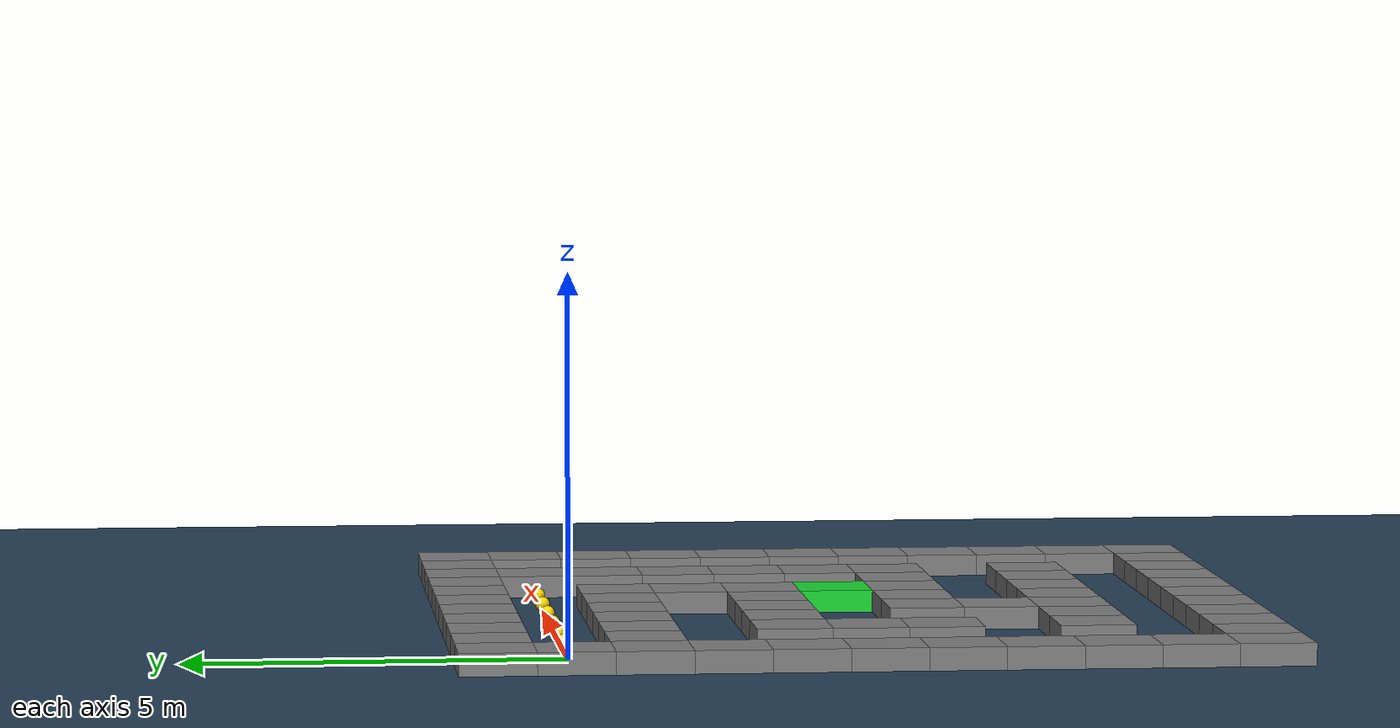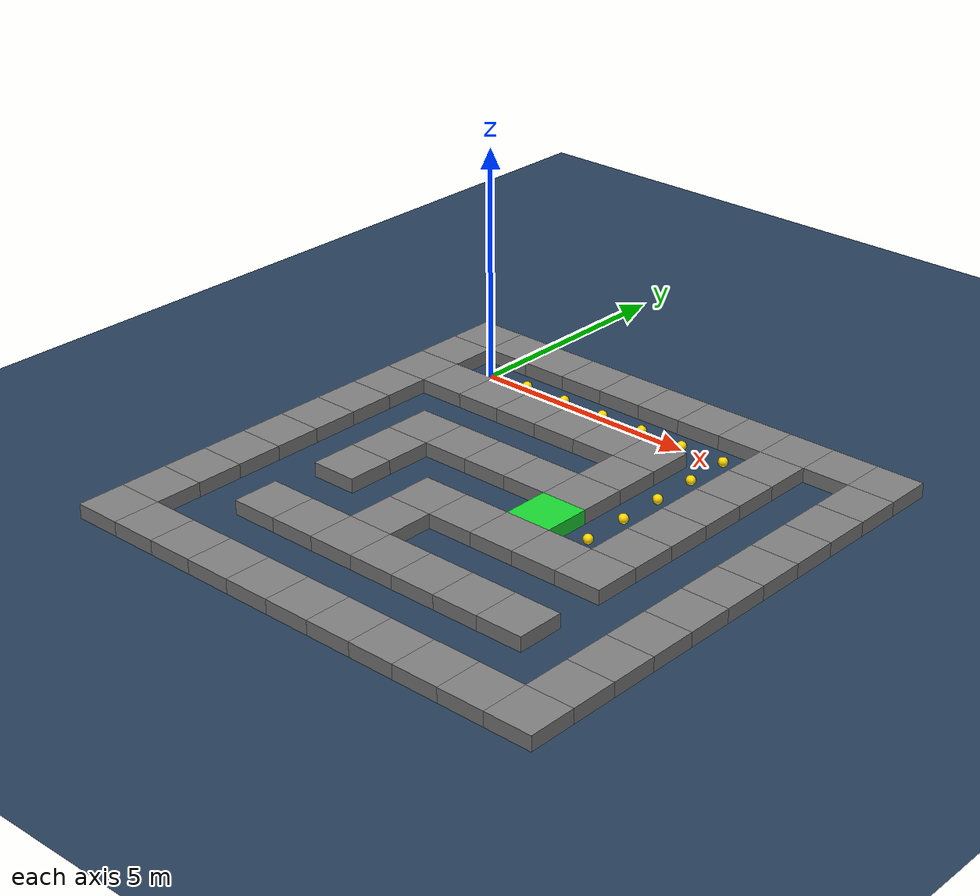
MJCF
<?xml version='1.0' encoding='utf-8'?>
<mujoco model="snake scene (no snake)">

  <compiler angle="radian" autolimits="true" />

  <option integrator="implicitfast" />

  <default>
    <geom friction="3 0.005 0.0001" />
  </default>

  <statistic center="0.3 0 0.4" extent="0.8" />

  <visual>
    <headlight diffuse="0.6 0.6 0.6" ambient="0.1 0.1 0.1" specular="0 0 0" />
    <rgba haze="0.15 0.25 0.35 1" />

    <global azimuth="120" elevation="-20" offwidth="1920" offheight="1080" />
  </visual>

  <asset>
    <texture type="skybox" builtin="gradient" rgb1="0.3 0.5 0.7" rgb2="0 0 0" width="512" height="3072" />
    <texture type="2d" name="groundplane" builtin="checker" mark="edge" rgb1="0.2 0.3 0.4" rgb2="0.1 0.2 0.3" markrgb="0.8 0.8 0.8" width="300" height="300" />
    <material name="groundplane" texture="groundplane" texuniform="true" texrepeat="5 5" reflectance="0.2" />
  </asset>

  <worldbody>
    <light pos="0 0 1.5" dir="0 0 -1" directional="true" />
    <geom name="floor" size="0 0 0.05" type="plane" material="groundplane" />
  <body name="box_0_0" pos="-1.0 1.0 0.15"><geom name="geom_0_0" type="box" size="0.5 0.5 0.15" rgba="0.5 0.5 0.5 1" /></body><body name="box_0_1" pos="0.0 1.0 0.15"><geom name="geom_0_1" type="box" size="0.5 0.5 0.15" rgba="0.5 0.5 0.5 1" /></body><body name="box_0_2" pos="1.0 1.0 0.15"><geom name="geom_0_2" type="box" size="0.5 0.5 0.15" rgba="0.5 0.5 0.5 1" /></body><body name="box_0_3" pos="2.0 1.0 0.15"><geom name="geom_0_3" type="box" size="0.5 0.5 0.15" rgba="0.5 0.5 0.5 1" /></body><body name="box_0_4" pos="3.0 1.0 0.15"><geom name="geom_0_4" type="box" size="0.5 0.5 0.15" rgba="0.5 0.5 0.5 1" /></body><body name="box_0_5" pos="4.0 1.0 0.15"><geom name="geom_0_5" type="box" size="0.5 0.5 0.15" rgba="0.5 0.5 0.5 1" /></body><body name="box_0_6" pos="5.0 1.0 0.15"><geom name="geom_0_6" type="box" size="0.5 0.5 0.15" rgba="0.5 0.5 0.5 1" /></body><body name="box_0_7" pos="6.0 1.0 0.15"><geom name="geom_0_7" type="box" size="0.5 0.5 0.15" rgba="0.5 0.5 0.5 1" /></body><body name="box_0_8" pos="7.0 1.0 0.15"><geom name="geom_0_8" type="box" size="0.5 0.5 0.15" rgba="0.5 0.5 0.5 1" /></body><body name="box_0_9" pos="8.0 1.0 0.15"><geom name="geom_0_9" type="box" size="0.5 0.5 0.15" rgba="0.5 0.5 0.5 1" /></body><body name="box_0_10" pos="9.0 1.0 0.15"><geom name="geom_0_10" type="box" size="0.5 0.5 0.15" rgba="0.5 0.5 0.5 1" /></body><body name="box_1_0" pos="-1.0 0.0 0.15"><geom name="geom_1_0" type="box" size="0.5 0.5 0.15" rgba="0.5 0.5 0.5 1" /></body><body name="box_1_8" pos="7.0 0.0 0.15"><geom name="geom_1_8" type="box" size="0.5 0.5 0.15" rgba="0.5 0.5 0.5 1" /></body><body name="box_1_10" pos="9.0 0.0 0.15"><geom name="geom_1_10" type="box" size="0.5 0.5 0.15" rgba="0.5 0.5 0.5 1" /></body><body name="box_2_0" pos="-1.0 -1.0 0.15"><geom name="geom_2_0" type="box" size="0.5 0.5 0.15" rgba="0.5 0.5 0.5 1" /></body><body name="box_2_1" pos="0.0 -1.0 0.15"><geom name="geom_2_1" type="box" size="0.5 0.5 0.15" rgba="0.5 0.5 0.5 1" /></body><body name="box_2_2" pos="1.0 -1.0 0.15"><geom name="geom_2_2" type="box" size="0.5 0.5 0.15" rgba="0.5 0.5 0.5 1" /></body><body name="box_2_3" pos="2.0 -1.0 0.15"><geom name="geom_2_3" type="box" size="0.5 0.5 0.15" rgba="0.5 0.5 0.5 1" /></body><body name="box_2_4" pos="3.0 -1.0 0.15"><geom name="geom_2_4" type="box" size="0.5 0.5 0.15" rgba="0.5 0.5 0.5 1" /></body><body name="box_2_5" pos="4.0 -1.0 0.15"><geom name="geom_2_5" type="box" size="0.5 0.5 0.15" rgba="0.5 0.5 0.5 1" /></body><body name="box_2_6" pos="5.0 -1.0 0.15"><geom name="geom_2_6" type="box" size="0.5 0.5 0.15" rgba="0.5 0.5 0.5 1" /></body><body name="box_2_8" pos="7.0 -1.0 0.15"><geom name="geom_2_8" type="box" size="0.5 0.5 0.15" rgba="0.5 0.5 0.5 1" /></body><body name="box_2_10" pos="9.0 -1.0 0.15"><geom name="geom_2_10" type="box" size="0.5 0.5 0.15" rgba="0.5 0.5 0.5 1" /></body><body name="box_3_0" pos="-1.0 -2.0 0.15"><geom name="geom_3_0" type="box" size="0.5 0.5 0.15" rgba="0.5 0.5 0.5 1" /></body><body name="box_3_6" pos="5.0 -2.0 0.15"><geom name="geom_3_6" type="box" size="0.5 0.5 0.15" rgba="0.5 0.5 0.5 1" /></body><body name="box_3_8" pos="7.0 -2.0 0.15"><geom name="geom_3_8" type="box" size="0.5 0.5 0.15" rgba="0.5 0.5 0.5 1" /></body><body name="box_3_10" pos="9.0 -2.0 0.15"><geom name="geom_3_10" type="box" size="0.5 0.5 0.15" rgba="0.5 0.5 0.5 1" /></body><body name="box_4_0" pos="-1.0 -3.0 0.15"><geom name="geom_4_0" type="box" size="0.5 0.5 0.15" rgba="0.5 0.5 0.5 1" /></body><body name="box_4_2" pos="1.0 -3.0 0.15"><geom name="geom_4_2" type="box" size="0.5 0.5 0.15" rgba="0.5 0.5 0.5 1" /></body><body name="box_4_3" pos="2.0 -3.0 0.15"><geom name="geom_4_3" type="box" size="0.5 0.5 0.15" rgba="0.5 0.5 0.5 1" /></body><body name="box_4_4" pos="3.0 -3.0 0.15"><geom name="geom_4_4" type="box" size="0.5 0.5 0.15" rgba="0.5 0.5 0.5 1" /></body><body name="box_4_5" pos="4.0 -3.0 0.15"><geom name="geom_4_5" type="box" size="0.5 0.5 0.15" rgba="0.5 0.5 0.5 1" /></body><body name="box_4_6" pos="5.0 -3.0 0.15"><geom name="geom_4_6" type="box" size="0.5 0.5 0.15" rgba="0.5 0.5 0.5 1" /></body><body name="box_4_8" pos="7.0 -3.0 0.15"><geom name="geom_4_8" type="box" size="0.5 0.5 0.15" rgba="0.5 0.5 0.5 1" /></body><body name="box_4_10" pos="9.0 -3.0 0.15"><geom name="geom_4_10" type="box" size="0.5 0.5 0.15" rgba="0.5 0.5 0.5 1" /></body><body name="box_5_0" pos="-1.0 -4.0 0.15"><geom name="geom_5_0" type="box" size="0.5 0.5 0.15" rgba="0.5 0.5 0.5 1" /></body><body name="box_5_2" pos="1.0 -4.0 0.15"><geom name="geom_5_2" type="box" size="0.5 0.5 0.15" rgba="0.5 0.5 0.5 1" /></body><body name="box_5_8" pos="7.0 -4.0 0.15"><geom name="geom_5_8" type="box" size="0.5 0.5 0.15" rgba="0.5 0.5 0.5 1" /></body><body name="box_5_10" pos="9.0 -4.0 0.15"><geom name="geom_5_10" type="box" size="0.5 0.5 0.15" rgba="0.5 0.5 0.5 1" /></body><body name="box_6_0" pos="-1.0 -5.0 0.15"><geom name="geom_6_0" type="box" size="0.5 0.5 0.15" rgba="0.5 0.5 0.5 1" /></body><body name="box_6_2" pos="1.0 -5.0 0.15"><geom name="geom_6_2" type="box" size="0.5 0.5 0.15" rgba="0.5 0.5 0.5 1" /></body><body name="box_6_4" pos="3.0 -5.0 0.15"><geom name="geom_6_4" type="box" size="0.5 0.5 0.15" rgba="0.5 0.5 0.5 1" /></body><body name="box_6_5" pos="4.0 -5.0 0.15"><geom name="geom_6_5" type="box" size="0.5 0.5 0.15" rgba="0.5 0.5 0.5 1" /></body><body name="box_6_6" pos="5.0 -5.0 0.15"><geom name="geom_6_6" type="box" size="0.5 0.5 0.15" rgba="0.5 0.5 0.5 1" /></body><body name="box_6_7" pos="6.0 -5.0 0.15"><geom name="geom_6_7" type="box" size="0.5 0.5 0.15" rgba="0.5 0.5 0.5 1" /></body><body name="box_6_8" pos="7.0 -5.0 0.15"><geom name="geom_6_8" type="box" size="0.5 0.5 0.15" rgba="0.5 0.5 0.5 1" /></body><body name="box_6_10" pos="9.0 -5.0 0.15"><geom name="geom_6_10" type="box" size="0.5 0.5 0.15" rgba="0.5 0.5 0.5 1" /></body><body name="box_7_0" pos="-1.0 -6.0 0.15"><geom name="geom_7_0" type="box" size="0.5 0.5 0.15" rgba="0.5 0.5 0.5 1" /></body><body name="box_7_4" pos="3.0 -6.0 0.15"><geom name="geom_7_4" type="box" size="0.5 0.5 0.15" rgba="0.5 0.5 0.5 1" /></body><body name="box_7_10" pos="9.0 -6.0 0.15"><geom name="geom_7_10" type="box" size="0.5 0.5 0.15" rgba="0.5 0.5 0.5 1" /></body><body name="box_8_0" pos="-1.0 -7.0 0.15"><geom name="geom_8_0" type="box" size="0.5 0.5 0.15" rgba="0.5 0.5 0.5 1" /></body><body name="box_8_2" pos="1.0 -7.0 0.15"><geom name="geom_8_2" type="box" size="0.5 0.5 0.15" rgba="0.5 0.5 0.5 1" /></body><body name="box_8_3" pos="2.0 -7.0 0.15"><geom name="geom_8_3" type="box" size="0.5 0.5 0.15" rgba="0.5 0.5 0.5 1" /></body><body name="box_8_4" pos="3.0 -7.0 0.15"><geom name="geom_8_4" type="box" size="0.5 0.5 0.15" rgba="0.5 0.5 0.5 1" /></body><body name="box_8_5" pos="4.0 -7.0 0.15"><geom name="geom_8_5" type="box" size="0.5 0.5 0.15" rgba="0.5 0.5 0.5 1" /></body><body name="box_8_6" pos="5.0 -7.0 0.15"><geom name="geom_8_6" type="box" size="0.5 0.5 0.15" rgba="0.5 0.5 0.5 1" /></body><body name="box_8_7" pos="6.0 -7.0 0.15"><geom name="geom_8_7" type="box" size="0.5 0.5 0.15" rgba="0.5 0.5 0.5 1" /></body><body name="box_8_8" pos="7.0 -7.0 0.15"><geom name="geom_8_8" type="box" size="0.5 0.5 0.15" rgba="0.5 0.5 0.5 1" /></body><body name="box_8_10" pos="9.0 -7.0 0.15"><geom name="geom_8_10" type="box" size="0.5 0.5 0.15" rgba="0.5 0.5 0.5 1" /></body><body name="box_9_0" pos="-1.0 -8.0 0.15"><geom name="geom_9_0" type="box" size="0.5 0.5 0.15" rgba="0.5 0.5 0.5 1" /></body><body name="box_9_10" pos="9.0 -8.0 0.15"><geom name="geom_9_10" type="box" size="0.5 0.5 0.15" rgba="0.5 0.5 0.5 1" /></body><body name="box_10_0" pos="-1.0 -9.0 0.15"><geom name="geom_10_0" type="box" size="0.5 0.5 0.15" rgba="0.5 0.5 0.5 1" /></body><body name="box_10_1" pos="0.0 -9.0 0.15"><geom name="geom_10_1" type="box" size="0.5 0.5 0.15" rgba="0.5 0.5 0.5 1" /></body><body name="box_10_2" pos="1.0 -9.0 0.15"><geom name="geom_10_2" type="box" size="0.5 0.5 0.15" rgba="0.5 0.5 0.5 1" /></body><body name="box_10_3" pos="2.0 -9.0 0.15"><geom name="geom_10_3" type="box" size="0.5 0.5 0.15" rgba="0.5 0.5 0.5 1" /></body><body name="box_10_4" pos="3.0 -9.0 0.15"><geom name="geom_10_4" type="box" size="0.5 0.5 0.15" rgba="0.5 0.5 0.5 1" /></body><body name="box_10_5" pos="4.0 -9.0 0.15"><geom name="geom_10_5" type="box" size="0.5 0.5 0.15" rgba="0.5 0.5 0.5 1" /></body><body name="box_10_6" pos="5.0 -9.0 0.15"><geom name="geom_10_6" type="box" size="0.5 0.5 0.15" rgba="0.5 0.5 0.5 1" /></body><body name="box_10_7" pos="6.0 -9.0 0.15"><geom name="geom_10_7" type="box" size="0.5 0.5 0.15" rgba="0.5 0.5 0.5 1" /></body><body name="box_10_8" pos="7.0 -9.0 0.15"><geom name="geom_10_8" type="box" size="0.5 0.5 0.15" rgba="0.5 0.5 0.5 1" /></body><body name="box_10_9" pos="8.0 -9.0 0.15"><geom name="geom_10_9" type="box" size="0.5 0.5 0.15" rgba="0.5 0.5 0.5 1" /></body><body name="box_10_10" pos="9.0 -9.0 0.15"><geom name="geom_10_10" type="box" size="0.5 0.5 0.15" rgba="0.5 0.5 0.5 1" /></body><geom name="waypoint_1" type="sphere" size="0.1" pos="1.0 -0.0 0.1" rgba="1 0.85 0 1" contype="0" conaffinity="0" /><geom name="waypoint_2" type="sphere" size="0.1" pos="2.0 -0.0 0.1" rgba="1 0.85 0 1" contype="0" conaffinity="0" /><geom name="waypoint_3" type="sphere" size="0.1" pos="3.0 -0.0 0.1" rgba="1 0.85 0 1" contype="0" conaffinity="0" /><geom name="waypoint_4" type="sphere" size="0.1" pos="4.0 -0.0 0.1" rgba="1 0.85 0 1" contype="0" conaffinity="0" /><geom name="waypoint_5" type="sphere" size="0.1" pos="5.0 -0.0 0.1" rgba="1 0.85 0 1" contype="0" conaffinity="0" /><geom name="waypoint_6" type="sphere" size="0.1" pos="6.0 -0.0 0.1" rgba="1 0.85 0 1" contype="0" conaffinity="0" /><geom name="waypoint_7" type="sphere" size="0.1" pos="6.0 -1.0 0.1" rgba="1 0.85 0 1" contype="0" conaffinity="0" /><geom name="waypoint_8" type="sphere" size="0.1" pos="6.0 -2.0 0.1" rgba="1 0.85 0 1" contype="0" conaffinity="0" /><geom name="waypoint_9" type="sphere" size="0.1" pos="6.0 -3.0 0.1" rgba="1 0.85 0 1" contype="0" conaffinity="0" /><geom name="waypoint_10" type="sphere" size="0.1" pos="6.0 -4.0 0.1" rgba="1 0.85 0 1" contype="0" conaffinity="0" /><body name="goal" pos="5.0 -4.0 0.15"><geom name="goal_geom" type="box" size="0.5 0.5 0.15" contype="0" conaffinity="0" rgba="0.1 0.85 0.2 0.9" /></body></worldbody>

</mujoco>
